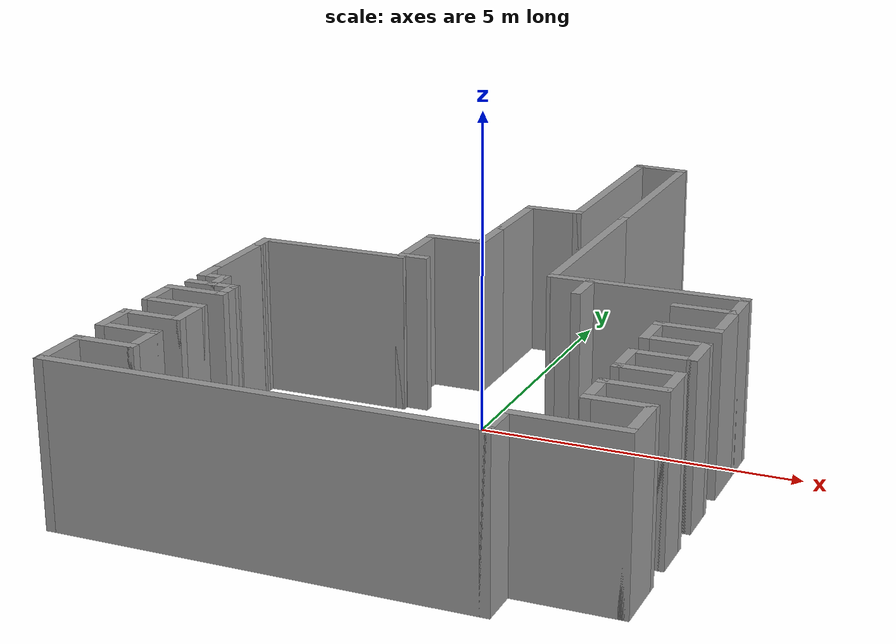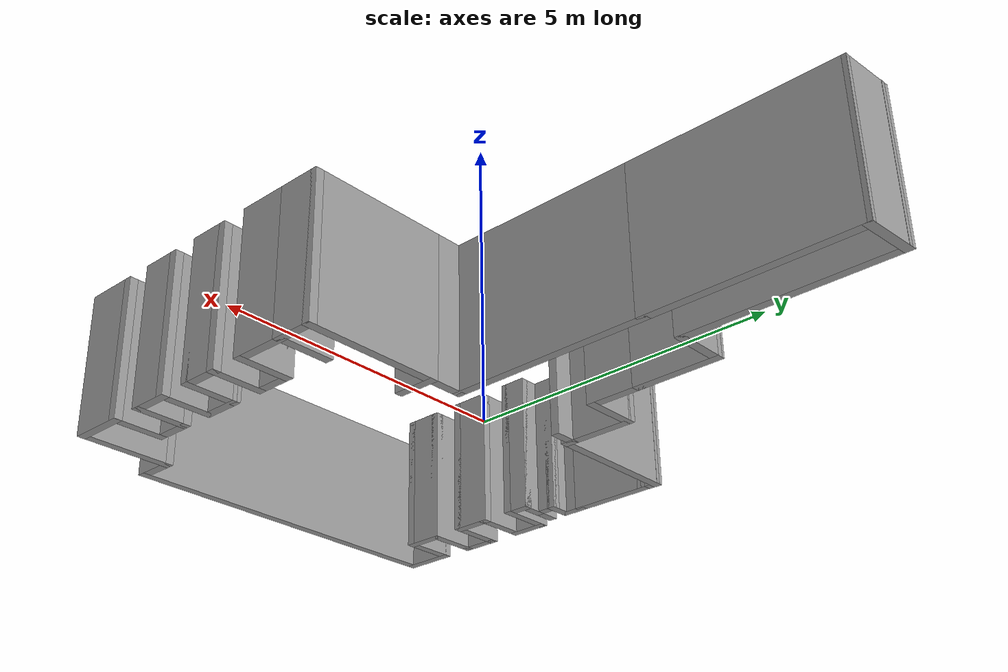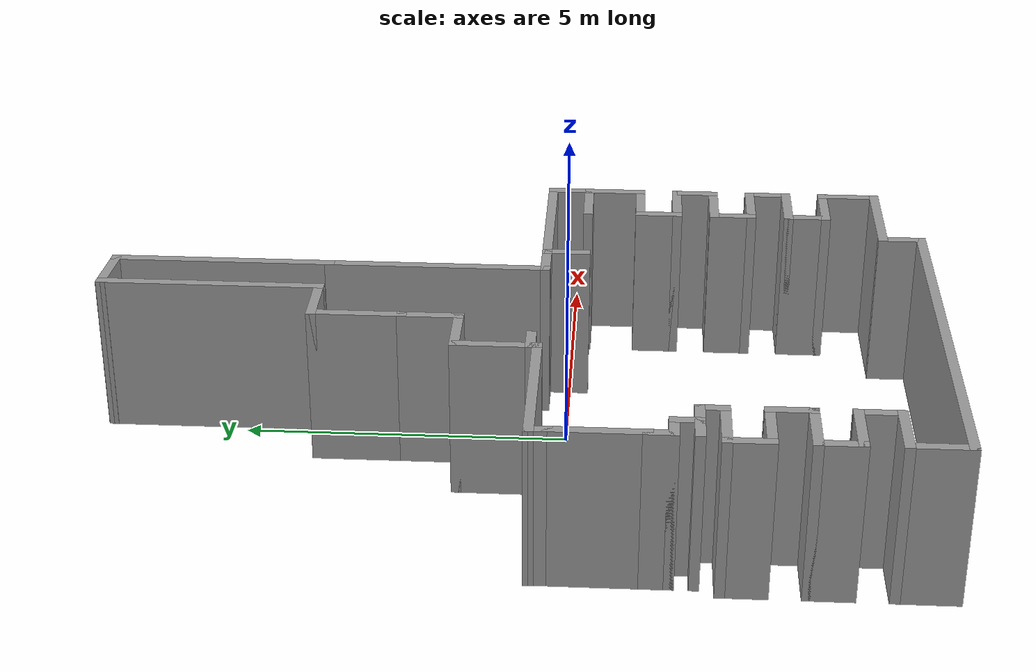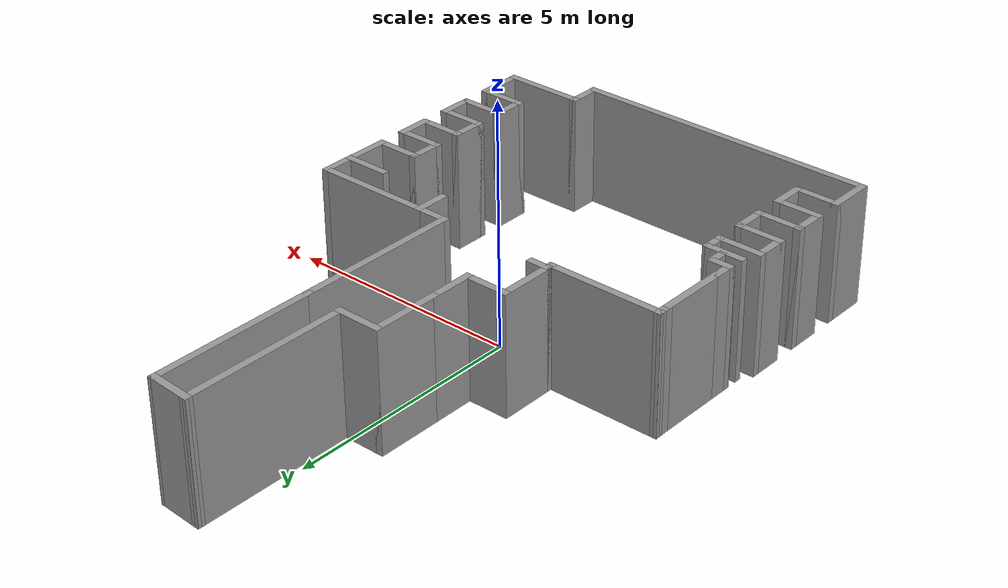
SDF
<?xml version='1.0'?>
<sdf version='1.7'>
  <model name='svr'>
    <pose>-0.051143 0.813155 0 0 -0 0</pose>
    <link name='Wall_0'>
      <collision name='Wall_0_Collision'>
        <geometry>
          <box>
            <size>0.5 0.15 2.5</size>
          </box>
        </geometry>
        <pose>0 0 1.25 0 -0 0</pose>
      </collision>
      <visual name='Wall_0_Visual'>
        <pose>0 0 1.25 0 -0 0</pose>
        <geometry>
          <box>
            <size>0.5 0.15 2.5</size>
          </box>
        </geometry>
        <material>
          <script>
            <uri>file://media/materials/scripts/gazebo.material</uri>
            <name>Gazebo/Grey</name>
          </script>
          <ambient>1 1 1 1</ambient>
        </material>
        <meta>
          <layer>0</layer>
        </meta>
      </visual>
      <pose>-3.825 -2.20301 0 0 -0 -1.5708</pose>
    </link>
    <link name='Wall_1'>
      <collision name='Wall_1_Collision'>
        <geometry>
          <box>
            <size>0.5 0.15 2.5</size>
          </box>
        </geometry>
        <pose>0 0 1.25 0 -0 0</pose>
      </collision>
      <visual name='Wall_1_Visual'>
        <pose>0 0 1.25 0 -0 0</pose>
        <geometry>
          <box>
            <size>0.5 0.15 2.5</size>
          </box>
        </geometry>
        <material>
          <script>
            <uri>file://media/materials/scripts/gazebo.material</uri>
            <name>Gazebo/Grey</name>
          </script>
          <ambient>1 1 1 1</ambient>
        </material>
        <meta>
          <layer>0</layer>
        </meta>
      </visual>
      <pose>-3.65 -2.37801 0 0 -0 0</pose>
    </link>
    <link name='Wall_11'>
      <collision name='Wall_11_Collision'>
        <geometry>
          <box>
            <size>0.5 0.15 2.5</size>
          </box>
        </geometry>
        <pose>0 0 1.25 0 -0 0</pose>
      </collision>
      <visual name='Wall_11_Visual'>
        <pose>0 0 1.25 0 -0 0</pose>
        <geometry>
          <box>
            <size>0.5 0.15 2.5</size>
          </box>
        </geometry>
        <material>
          <script>
            <uri>file://media/materials/scripts/gazebo.material</uri>
            <name>Gazebo/Grey</name>
          </script>
          <ambient>1 1 1 1</ambient>
        </material>
        <meta>
          <layer>0</layer>
        </meta>
      </visual>
      <pose>-3.3 -2.72801 0 0 -0 0</pose>
    </link>
    <link name='Wall_12'>
      <collision name='Wall_12_Collision'>
        <geometry>
          <box>
            <size>0.5 0.15 2.5</size>
          </box>
        </geometry>
        <pose>0 0 1.25 0 -0 0</pose>
      </collision>
      <visual name='Wall_12_Visual'>
        <pose>0 0 1.25 0 -0 0</pose>
        <geometry>
          <box>
            <size>0.5 0.15 2.5</size>
          </box>
        </geometry>
        <material>
          <script>
            <uri>file://media/materials/scripts/gazebo.material</uri>
            <name>Gazebo/Grey</name>
          </script>
          <ambient>1 1 1 1</ambient>
        </material>
        <meta>
          <layer>0</layer>
        </meta>
      </visual>
      <pose>-3.125 -2.90301 0 0 -0 -1.5708</pose>
    </link>
    <link name='Wall_13'>
      <collision name='Wall_13_Collision'>
        <geometry>
          <box>
            <size>1 0.15 2.5</size>
          </box>
        </geometry>
        <pose>0 0 1.25 0 -0 0</pose>
      </collision>
      <visual name='Wall_13_Visual'>
        <pose>0 0 1.25 0 -0 0</pose>
        <geometry>
          <box>
            <size>1 0.15 2.5</size>
          </box>
        </geometry>
        <material>
          <script>
            <uri>file://media/materials/scripts/gazebo.material</uri>
            <name>Gazebo/Grey</name>
          </script>
          <ambient>1 1 1 1</ambient>
        </material>
        <meta>
          <layer>0</layer>
        </meta>
      </visual>
      <pose>-3.55 -3.07801 0 0 -0 3.14159</pose>
    </link>
    <link name='Wall_18'>
      <collision name='Wall_18_Collision'>
        <geometry>
          <box>
            <size>0.75 0.15 2.5</size>
          </box>
        </geometry>
        <pose>0 0 1.25 0 -0 0</pose>
      </collision>
      <visual name='Wall_18_Visual'>
        <pose>0 0 1.25 0 -0 0</pose>
        <geometry>
          <box>
            <size>0.75 0.15 2.5</size>
          </box>
        </geometry>
        <material>
          <script>
            <uri>file://media/materials/scripts/gazebo.material</uri>
            <name>Gazebo/Grey</name>
          </script>
          <ambient>1 1 1 1</ambient>
        </material>
        <meta>
          <layer>0</layer>
        </meta>
      </visual>
      <pose>-3.975 -3.37801 0 0 -0 -1.5708</pose>
    </link>
    <link name='Wall_19'>
      <collision name='Wall_19_Collision'>
        <geometry>
          <box>
            <size>1 0.15 2.5</size>
          </box>
        </geometry>
        <pose>0 0 1.25 0 -0 0</pose>
      </collision>
      <visual name='Wall_19_Visual'>
        <pose>0 0 1.25 0 -0 0</pose>
        <geometry>
          <box>
            <size>1 0.15 2.5</size>
          </box>
        </geometry>
        <material>
          <script>
            <uri>file://media/materials/scripts/gazebo.material</uri>
            <name>Gazebo/Grey</name>
          </script>
          <ambient>1 1 1 1</ambient>
        </material>
        <meta>
          <layer>0</layer>
        </meta>
      </visual>
      <pose>-3.55 -3.67801 0 0 -0 0</pose>
    </link>
    <link name='Wall_21'>
      <collision name='Wall_21_Collision'>
        <geometry>
          <box>
            <size>0.75 0.15 2.5</size>
          </box>
        </geometry>
        <pose>0 0 1.25 0 -0 0</pose>
      </collision>
      <visual name='Wall_21_Visual'>
        <pose>0 0 1.25 0 -0 0</pose>
        <geometry>
          <box>
            <size>0.75 0.15 2.5</size>
          </box>
        </geometry>
        <material>
          <script>
            <uri>file://media/materials/scripts/gazebo.material</uri>
            <name>Gazebo/Grey</name>
          </script>
          <ambient>1 1 1 1</ambient>
        </material>
        <meta>
          <layer>0</layer>
        </meta>
      </visual>
      <pose>-3.125 -3.97801 0 0 -0 -1.5708</pose>
    </link>
    <link name='Wall_22'>
      <collision name='Wall_22_Collision'>
        <geometry>
          <box>
            <size>1 0.15 2.5</size>
          </box>
        </geometry>
        <pose>0 0 1.25 0 -0 0</pose>
      </collision>
      <visual name='Wall_22_Visual'>
        <pose>0 0 1.25 0 -0 0</pose>
        <geometry>
          <box>
            <size>1 0.15 2.5</size>
          </box>
        </geometry>
        <material>
          <script>
            <uri>file://media/materials/scripts/gazebo.material</uri>
            <name>Gazebo/Grey</name>
          </script>
          <ambient>1 1 1 1</ambient>
        </material>
        <meta>
          <layer>0</layer>
        </meta>
      </visual>
      <pose>-3.55 -4.27801 0 0 -0 3.14159</pose>
    </link>
    <link name='Wall_23'>
      <collision name='Wall_23_Collision'>
        <geometry>
          <box>
            <size>0.75 0.15 2.5</size>
          </box>
        </geometry>
        <pose>0 0 1.25 0 -0 0</pose>
      </collision>
      <visual name='Wall_23_Visual'>
        <pose>0 0 1.25 0 -0 0</pose>
        <geometry>
          <box>
            <size>0.75 0.15 2.5</size>
          </box>
        </geometry>
        <material>
          <script>
            <uri>file://media/materials/scripts/gazebo.material</uri>
            <name>Gazebo/Grey</name>
          </script>
          <ambient>1 1 1 1</ambient>
        </material>
        <meta>
          <layer>0</layer>
        </meta>
      </visual>
      <pose>-3.975 -4.57801 0 0 -0 -1.5708</pose>
    </link>
    <link name='Wall_24'>
      <collision name='Wall_24_Collision'>
        <geometry>
          <box>
            <size>1 0.15 2.5</size>
          </box>
        </geometry>
        <pose>0 0 1.25 0 -0 0</pose>
      </collision>
      <visual name='Wall_24_Visual'>
        <pose>0 0 1.25 0 -0 0</pose>
        <geometry>
          <box>
            <size>1 0.15 2.5</size>
          </box>
        </geometry>
        <material>
          <script>
            <uri>file://media/materials/scripts/gazebo.material</uri>
            <name>Gazebo/Grey</name>
          </script>
          <ambient>1 1 1 1</ambient>
        </material>
        <meta>
          <layer>0</layer>
        </meta>
      </visual>
      <pose>-3.55 -4.87801 0 0 -0 0</pose>
    </link>
    <link name='Wall_26'>
      <collision name='Wall_26_Collision'>
        <geometry>
          <box>
            <size>0.75 0.15 2.5</size>
          </box>
        </geometry>
        <pose>0 0 1.25 0 -0 0</pose>
      </collision>
      <visual name='Wall_26_Visual'>
        <pose>0 0 1.25 0 -0 0</pose>
        <geometry>
          <box>
            <size>0.75 0.15 2.5</size>
          </box>
        </geometry>
        <material>
          <script>
            <uri>file://media/materials/scripts/gazebo.material</uri>
            <name>Gazebo/Grey</name>
          </script>
          <ambient>1 1 1 1</ambient>
        </material>
        <meta>
          <layer>0</layer>
        </meta>
      </visual>
      <pose>-3.125 -5.17801 0 0 -0 -1.5708</pose>
    </link>
    <link name='Wall_27'>
      <collision name='Wall_27_Collision'>
        <geometry>
          <box>
            <size>1 0.15 2.5</size>
          </box>
        </geometry>
        <pose>0 0 1.25 0 -0 0</pose>
      </collision>
      <visual name='Wall_27_Visual'>
        <pose>0 0 1.25 0 -0 0</pose>
        <geometry>
          <box>
            <size>1 0.15 2.5</size>
          </box>
        </geometry>
        <material>
          <script>
            <uri>file://media/materials/scripts/gazebo.material</uri>
            <name>Gazebo/Grey</name>
          </script>
          <ambient>1 1 1 1</ambient>
        </material>
        <meta>
          <layer>0</layer>
        </meta>
      </visual>
      <pose>-3.55 -5.47801 0 0 -0 3.14159</pose>
    </link>
    <link name='Wall_28'>
      <collision name='Wall_28_Collision'>
        <geometry>
          <box>
            <size>1 0.15 2.5</size>
          </box>
        </geometry>
        <pose>0 0 1.25 0 -0 0</pose>
      </collision>
      <visual name='Wall_28_Visual'>
        <pose>0 0 1.25 0 -0 0</pose>
        <geometry>
          <box>
            <size>1 0.15 2.5</size>
          </box>
        </geometry>
        <material>
          <script>
            <uri>file://media/materials/scripts/gazebo.material</uri>
            <name>Gazebo/Grey</name>
          </script>
          <ambient>1 1 1 1</ambient>
        </material>
        <meta>
          <layer>0</layer>
        </meta>
      </visual>
      <pose>-3.975 -5.90301 0 0 -0 -1.5708</pose>
    </link>
    <link name='Wall_30'>
      <collision name='Wall_30_Collision'>
        <geometry>
          <box>
            <size>6.5 0.15 2.5</size>
          </box>
        </geometry>
        <pose>0 0 1.25 0 -0 0</pose>
      </collision>
      <visual name='Wall_30_Visual'>
        <pose>0 0 1.25 0 -0 0</pose>
        <geometry>
          <box>
            <size>6.5 0.15 2.5</size>
          </box>
        </geometry>
        <material>
          <script>
            <uri>file://media/materials/scripts/gazebo.material</uri>
            <name>Gazebo/Grey</name>
          </script>
          <ambient>1 1 1 1</ambient>
        </material>
        <meta>
          <layer>0</layer>
        </meta>
      </visual>
      <pose>-0.8 -6.32801 0 0 -0 0</pose>
    </link>
    <link name='Wall_31'>
      <collision name='Wall_31_Collision'>
        <geometry>
          <box>
            <size>0.75 0.15 2.5</size>
          </box>
        </geometry>
        <pose>0 0 1.25 0 -0 0</pose>
      </collision>
      <visual name='Wall_31_Visual'>
        <pose>0 0 1.25 0 -0 0</pose>
        <geometry>
          <box>
            <size>0.75 0.15 2.5</size>
          </box>
        </geometry>
        <material>
          <script>
            <uri>file://media/materials/scripts/gazebo.material</uri>
            <name>Gazebo/Grey</name>
          </script>
          <ambient>1 1 1 1</ambient>
        </material>
        <meta>
          <layer>0</layer>
        </meta>
      </visual>
      <pose>2.375 -6.02801 0 0 -0 1.5708</pose>
    </link>
    <link name='Wall_33'>
      <collision name='Wall_33_Collision'>
        <geometry>
          <box>
            <size>1.75 0.15 2.5</size>
          </box>
        </geometry>
        <pose>0 0 1.25 0 -0 0</pose>
      </collision>
      <visual name='Wall_33_Visual'>
        <pose>0 0 1.25 0 -0 0</pose>
        <geometry>
          <box>
            <size>1.75 0.15 2.5</size>
          </box>
        </geometry>
        <material>
          <script>
            <uri>file://media/materials/scripts/gazebo.material</uri>
            <name>Gazebo/Grey</name>
          </script>
          <ambient>1 1 1 1</ambient>
        </material>
        <meta>
          <layer>0</layer>
        </meta>
      </visual>
      <pose>3.175 -5.72801 0 0 -0 0</pose>
    </link>
    <link name='Wall_34'>
      <collision name='Wall_34_Collision'>
        <geometry>
          <box>
            <size>1 0.15 2.5</size>
          </box>
        </geometry>
        <pose>0 0 1.25 0 -0 0</pose>
      </collision>
      <visual name='Wall_34_Visual'>
        <pose>0 0 1.25 0 -0 0</pose>
        <geometry>
          <box>
            <size>1 0.15 2.5</size>
          </box>
        </geometry>
        <material>
          <script>
            <uri>file://media/materials/scripts/gazebo.material</uri>
            <name>Gazebo/Grey</name>
          </script>
          <ambient>1 1 1 1</ambient>
        </material>
        <meta>
          <layer>0</layer>
        </meta>
      </visual>
      <pose>3.975 -5.30301 0 0 -0 1.5708</pose>
    </link>
    <link name='Wall_35'>
      <collision name='Wall_35_Collision'>
        <geometry>
          <box>
            <size>1 0.15 2.5</size>
          </box>
        </geometry>
        <pose>0 0 1.25 0 -0 0</pose>
      </collision>
      <visual name='Wall_35_Visual'>
        <pose>0 0 1.25 0 -0 0</pose>
        <geometry>
          <box>
            <size>1 0.15 2.5</size>
          </box>
        </geometry>
        <material>
          <script>
            <uri>file://media/materials/scripts/gazebo.material</uri>
            <name>Gazebo/Grey</name>
          </script>
          <ambient>1 1 1 1</ambient>
        </material>
        <meta>
          <layer>0</layer>
        </meta>
      </visual>
      <pose>3.55 -4.87801 0 0 -0 3.14159</pose>
    </link>
    <link name='Wall_36'>
      <collision name='Wall_36_Collision'>
        <geometry>
          <box>
            <size>0.75 0.15 2.5</size>
          </box>
        </geometry>
        <pose>0 0 1.25 0 -0 0</pose>
      </collision>
      <visual name='Wall_36_Visual'>
        <pose>0 0 1.25 0 -0 0</pose>
        <geometry>
          <box>
            <size>0.75 0.15 2.5</size>
          </box>
        </geometry>
        <material>
          <script>
            <uri>file://media/materials/scripts/gazebo.material</uri>
            <name>Gazebo/Grey</name>
          </script>
          <ambient>1 1 1 1</ambient>
        </material>
        <meta>
          <layer>0</layer>
        </meta>
      </visual>
      <pose>3.125 -4.57801 0 0 -0 1.5708</pose>
    </link>
    <link name='Wall_37'>
      <collision name='Wall_37_Collision'>
        <geometry>
          <box>
            <size>1 0.15 2.5</size>
          </box>
        </geometry>
        <pose>0 0 1.25 0 -0 0</pose>
      </collision>
      <visual name='Wall_37_Visual'>
        <pose>0 0 1.25 0 -0 0</pose>
        <geometry>
          <box>
            <size>1 0.15 2.5</size>
          </box>
        </geometry>
        <material>
          <script>
            <uri>file://media/materials/scripts/gazebo.material</uri>
            <name>Gazebo/Grey</name>
          </script>
          <ambient>1 1 1 1</ambient>
        </material>
        <meta>
          <layer>0</layer>
        </meta>
      </visual>
      <pose>3.55 -4.27801 0 0 -0 0</pose>
    </link>
    <link name='Wall_38'>
      <collision name='Wall_38_Collision'>
        <geometry>
          <box>
            <size>0.75 0.15 2.5</size>
          </box>
        </geometry>
        <pose>0 0 1.25 0 -0 0</pose>
      </collision>
      <visual name='Wall_38_Visual'>
        <pose>0 0 1.25 0 -0 0</pose>
        <geometry>
          <box>
            <size>0.75 0.15 2.5</size>
          </box>
        </geometry>
        <material>
          <script>
            <uri>file://media/materials/scripts/gazebo.material</uri>
            <name>Gazebo/Grey</name>
          </script>
          <ambient>1 1 1 1</ambient>
        </material>
        <meta>
          <layer>0</layer>
        </meta>
      </visual>
      <pose>3.975 -3.97801 0 0 -0 1.5708</pose>
    </link>
    <link name='Wall_39'>
      <collision name='Wall_39_Collision'>
        <geometry>
          <box>
            <size>1 0.15 2.5</size>
          </box>
        </geometry>
        <pose>0 0 1.25 0 -0 0</pose>
      </collision>
      <visual name='Wall_39_Visual'>
        <pose>0 0 1.25 0 -0 0</pose>
        <geometry>
          <box>
            <size>1 0.15 2.5</size>
          </box>
        </geometry>
        <material>
          <script>
            <uri>file://media/materials/scripts/gazebo.material</uri>
            <name>Gazebo/Grey</name>
          </script>
          <ambient>1 1 1 1</ambient>
        </material>
        <meta>
          <layer>0</layer>
        </meta>
      </visual>
      <pose>3.55 -3.67801 0 0 -0 3.14159</pose>
    </link>
    <link name='Wall_40'>
      <collision name='Wall_40_Collision'>
        <geometry>
          <box>
            <size>0.75 0.15 2.5</size>
          </box>
        </geometry>
        <pose>0 0 1.25 0 -0 0</pose>
      </collision>
      <visual name='Wall_40_Visual'>
        <pose>0 0 1.25 0 -0 0</pose>
        <geometry>
          <box>
            <size>0.75 0.15 2.5</size>
          </box>
        </geometry>
        <material>
          <script>
            <uri>file://media/materials/scripts/gazebo.material</uri>
            <name>Gazebo/Grey</name>
          </script>
          <ambient>1 1 1 1</ambient>
        </material>
        <meta>
          <layer>0</layer>
        </meta>
      </visual>
      <pose>3.125 -3.37801 0 0 -0 1.5708</pose>
    </link>
    <link name='Wall_41'>
      <collision name='Wall_41_Collision'>
        <geometry>
          <box>
            <size>1 0.15 2.5</size>
          </box>
        </geometry>
        <pose>0 0 1.25 0 -0 0</pose>
      </collision>
      <visual name='Wall_41_Visual'>
        <pose>0 0 1.25 0 -0 0</pose>
        <geometry>
          <box>
            <size>1 0.15 2.5</size>
          </box>
        </geometry>
        <material>
          <script>
            <uri>file://media/materials/scripts/gazebo.material</uri>
            <name>Gazebo/Grey</name>
          </script>
          <ambient>1 1 1 1</ambient>
        </material>
        <meta>
          <layer>0</layer>
        </meta>
      </visual>
      <pose>3.55 -3.07801 0 0 -0 0</pose>
    </link>
    <link name='Wall_43'>
      <collision name='Wall_43_Collision'>
        <geometry>
          <box>
            <size>0.75 0.15 2.5</size>
          </box>
        </geometry>
        <pose>0 0 1.25 0 -0 0</pose>
      </collision>
      <visual name='Wall_43_Visual'>
        <pose>0 0 1.25 0 -0 0</pose>
        <geometry>
          <box>
            <size>0.75 0.15 2.5</size>
          </box>
        </geometry>
        <material>
          <script>
            <uri>file://media/materials/scripts/gazebo.material</uri>
            <name>Gazebo/Grey</name>
          </script>
          <ambient>1 1 1 1</ambient>
        </material>
        <meta>
          <layer>0</layer>
        </meta>
      </visual>
      <pose>3.975 -2.77801 0 0 -0 1.5708</pose>
    </link>
    <link name='Wall_44'>
      <collision name='Wall_44_Collision'>
        <geometry>
          <box>
            <size>1 0.15 2.5</size>
          </box>
        </geometry>
        <pose>0 0 1.25 0 -0 0</pose>
      </collision>
      <visual name='Wall_44_Visual'>
        <pose>0 0 1.25 0 -0 0</pose>
        <geometry>
          <box>
            <size>1 0.15 2.5</size>
          </box>
        </geometry>
        <material>
          <script>
            <uri>file://media/materials/scripts/gazebo.material</uri>
            <name>Gazebo/Grey</name>
          </script>
          <ambient>1 1 1 1</ambient>
        </material>
        <meta>
          <layer>0</layer>
        </meta>
      </visual>
      <pose>3.55 -2.47801 0 0 -0 3.14159</pose>
    </link>
    <link name='Wall_45'>
      <collision name='Wall_45_Collision'>
        <geometry>
          <box>
            <size>0.75 0.15 2.5</size>
          </box>
        </geometry>
        <pose>0 0 1.25 0 -0 0</pose>
      </collision>
      <visual name='Wall_45_Visual'>
        <pose>0 0 1.25 0 -0 0</pose>
        <geometry>
          <box>
            <size>0.75 0.15 2.5</size>
          </box>
        </geometry>
        <material>
          <script>
            <uri>file://media/materials/scripts/gazebo.material</uri>
            <name>Gazebo/Grey</name>
          </script>
          <ambient>1 1 1 1</ambient>
        </material>
        <meta>
          <layer>0</layer>
        </meta>
      </visual>
      <pose>3.125 -2.17801 0 0 -0 1.5708</pose>
    </link>
    <link name='Wall_46'>
      <collision name='Wall_46_Collision'>
        <geometry>
          <box>
            <size>1 0.15 2.5</size>
          </box>
        </geometry>
        <pose>0 0 1.25 0 -0 0</pose>
      </collision>
      <visual name='Wall_46_Visual'>
        <pose>0 0 1.25 0 -0 0</pose>
        <geometry>
          <box>
            <size>1 0.15 2.5</size>
          </box>
        </geometry>
        <material>
          <script>
            <uri>file://media/materials/scripts/gazebo.material</uri>
            <name>Gazebo/Grey</name>
          </script>
          <ambient>1 1 1 1</ambient>
        </material>
        <meta>
          <layer>0</layer>
        </meta>
      </visual>
      <pose>3.55 -1.87801 0 0 -0 0</pose>
    </link>
    <link name='Wall_47'>
      <collision name='Wall_47_Collision'>
        <geometry>
          <box>
            <size>1 0.15 2.5</size>
          </box>
        </geometry>
        <pose>0 0 1.25 0 -0 0</pose>
      </collision>
      <visual name='Wall_47_Visual'>
        <pose>0 0 1.25 0 -0 0</pose>
        <geometry>
          <box>
            <size>1 0.15 2.5</size>
          </box>
        </geometry>
        <material>
          <script>
            <uri>file://media/materials/scripts/gazebo.material</uri>
            <name>Gazebo/Grey</name>
          </script>
          <ambient>1 1 1 1</ambient>
        </material>
        <meta>
          <layer>0</layer>
        </meta>
      </visual>
      <pose>3.975 -1.45301 0 0 -0 1.5708</pose>
    </link>
    <link name='Wall_48'>
      <collision name='Wall_48_Collision'>
        <geometry>
          <box>
            <size>1 0.15 2.5</size>
          </box>
        </geometry>
        <pose>0 0 1.25 0 -0 0</pose>
      </collision>
      <visual name='Wall_48_Visual'>
        <pose>0 0 1.25 0 -0 0</pose>
        <geometry>
          <box>
            <size>1 0.15 2.5</size>
          </box>
        </geometry>
        <material>
          <script>
            <uri>file://media/materials/scripts/gazebo.material</uri>
            <name>Gazebo/Grey</name>
          </script>
          <ambient>1 1 1 1</ambient>
        </material>
        <meta>
          <layer>0</layer>
        </meta>
      </visual>
      <pose>3.55 -1.02801 0 0 -0 3.14159</pose>
    </link>
    <link name='Wall_50'>
      <collision name='Wall_50_Collision'>
        <geometry>
          <box>
            <size>0.75 0.15 2.5</size>
          </box>
        </geometry>
        <pose>0 0 1.25 0 -0 0</pose>
      </collision>
      <visual name='Wall_50_Visual'>
        <pose>0 0 1.25 0 -0 0</pose>
        <geometry>
          <box>
            <size>0.75 0.15 2.5</size>
          </box>
        </geometry>
        <material>
          <script>
            <uri>file://media/materials/scripts/gazebo.material</uri>
            <name>Gazebo/Grey</name>
          </script>
          <ambient>1 1 1 1</ambient>
        </material>
        <meta>
          <layer>0</layer>
        </meta>
      </visual>
      <pose>3.975 -0.72801 0 0 -0 1.5708</pose>
    </link>
    <link name='Wall_52'>
      <collision name='Wall_52_Collision'>
        <geometry>
          <box>
            <size>1.5 0.15 2.5</size>
          </box>
        </geometry>
        <pose>0 0 1.25 0 -0 0</pose>
      </collision>
      <visual name='Wall_52_Visual'>
        <pose>0 0 1.25 0 -0 0</pose>
        <geometry>
          <box>
            <size>1.5 0.15 2.5</size>
          </box>
        </geometry>
        <material>
          <script>
            <uri>file://media/materials/scripts/gazebo.material</uri>
            <name>Gazebo/Grey</name>
          </script>
          <ambient>1 1 1 1</ambient>
        </material>
        <meta>
          <layer>0</layer>
        </meta>
      </visual>
      <pose>-3.825 -1.35301 0 0 -0 1.5708</pose>
    </link>
    <link name='Wall_7'>
      <collision name='Wall_7_Collision'>
        <geometry>
          <box>
            <size>0.5 0.15 2.5</size>
          </box>
        </geometry>
        <pose>0 0 1.25 0 -0 0</pose>
      </collision>
      <visual name='Wall_7_Visual'>
        <pose>0 0 1.25 0 -0 0</pose>
        <geometry>
          <box>
            <size>0.5 0.15 2.5</size>
          </box>
        </geometry>
        <material>
          <script>
            <uri>file://media/materials/scripts/gazebo.material</uri>
            <name>Gazebo/Grey</name>
          </script>
          <ambient>1 1 1 1</ambient>
        </material>
        <meta>
          <layer>0</layer>
        </meta>
      </visual>
      <pose>-3.475 -2.55301 0 0 -0 -1.5708</pose>
    </link>
    <link name='Wall_72'>
      <collision name='Wall_72_Collision'>
        <geometry>
          <box>
            <size>0.40146 0.15 2.5</size>
          </box>
        </geometry>
        <pose>0 0 1.25 0 -0 0</pose>
      </collision>
      <visual name='Wall_72_Visual'>
        <pose>0 0 1.25 0 -0 0</pose>
        <geometry>
          <box>
            <size>0.40146 0.15 2.5</size>
          </box>
        </geometry>
        <material>
          <script>
            <uri>file://media/materials/scripts/gazebo.material</uri>
            <name>Gazebo/Grey</name>
          </script>
          <ambient>1 1 1 1</ambient>
        </material>
        <meta>
          <layer>0</layer>
        </meta>
      </visual>
      <pose>-3.82783 -0.552311 0 0 -0 1.5933</pose>
    </link>
    <link name='Wall_74'>
      <collision name='Wall_74_Collision'>
        <geometry>
          <box>
            <size>2.5 0.15 2.5</size>
          </box>
        </geometry>
        <pose>0 0 1.25 0 -0 0</pose>
      </collision>
      <visual name='Wall_74_Visual'>
        <pose>0 0 1.25 0 -0 0</pose>
        <geometry>
          <box>
            <size>2.5 0.15 2.5</size>
          </box>
        </geometry>
        <material>
          <script>
            <uri>file://media/materials/scripts/gazebo.material</uri>
            <name>Gazebo/Grey</name>
          </script>
          <ambient>1 1 1 1</ambient>
        </material>
        <meta>
          <layer>0</layer>
        </meta>
      </visual>
      <pose>-2.65566 -0.426613 0 0 -0 0</pose>
    </link>
    <link name='Wall_75'>
      <collision name='Wall_75_Collision'>
        <geometry>
          <box>
            <size>0.25 0.15 2.5</size>
          </box>
        </geometry>
        <pose>0 0 1.25 0 -0 0</pose>
      </collision>
      <visual name='Wall_75_Visual'>
        <pose>0 0 1.25 0 -0 0</pose>
        <geometry>
          <box>
            <size>0.25 0.15 2.5</size>
          </box>
        </geometry>
        <material>
          <script>
            <uri>file://media/materials/scripts/gazebo.material</uri>
            <name>Gazebo/Grey</name>
          </script>
          <ambient>1 1 1 1</ambient>
        </material>
        <meta>
          <layer>0</layer>
        </meta>
      </visual>
      <pose>-1.48066 -0.376613 0 0 -0 1.5708</pose>
    </link>
    <link name='Wall_76'>
      <collision name='Wall_76_Collision'>
        <geometry>
          <box>
            <size>0.5 0.15 2.5</size>
          </box>
        </geometry>
        <pose>0 0 1.25 0 -0 0</pose>
      </collision>
      <visual name='Wall_76_Visual'>
        <pose>0 0 1.25 0 -0 0</pose>
        <geometry>
          <box>
            <size>0.5 0.15 2.5</size>
          </box>
        </geometry>
        <material>
          <script>
            <uri>file://media/materials/scripts/gazebo.material</uri>
            <name>Gazebo/Grey</name>
          </script>
          <ambient>1 1 1 1</ambient>
        </material>
        <meta>
          <layer>0</layer>
        </meta>
      </visual>
      <pose>-1.30566 -0.326613 0 0 -0 0</pose>
    </link>
    <link name='Wall_78'>
      <collision name='Wall_78_Collision'>
        <geometry>
          <box>
            <size>1.25 0.15 2.5</size>
          </box>
        </geometry>
        <pose>0 0 1.25 0 -0 0</pose>
      </collision>
      <visual name='Wall_78_Visual'>
        <pose>0 0 1.25 0 -0 0</pose>
        <geometry>
          <box>
            <size>1.25 0.15 2.5</size>
          </box>
        </geometry>
        <material>
          <script>
            <uri>file://media/materials/scripts/gazebo.material</uri>
            <name>Gazebo/Grey</name>
          </script>
          <ambient>1 1 1 1</ambient>
        </material>
        <meta>
          <layer>0</layer>
        </meta>
      </visual>
      <pose>-1.48066 0.223387 0 0 -0 1.5708</pose>
    </link>
    <link name='Wall_79'>
      <collision name='Wall_79_Collision'>
        <geometry>
          <box>
            <size>1 0.15 2.5</size>
          </box>
        </geometry>
        <pose>0 0 1.25 0 -0 0</pose>
      </collision>
      <visual name='Wall_79_Visual'>
        <pose>0 0 1.25 0 -0 0</pose>
        <geometry>
          <box>
            <size>1 0.15 2.5</size>
          </box>
        </geometry>
        <material>
          <script>
            <uri>file://media/materials/scripts/gazebo.material</uri>
            <name>Gazebo/Grey</name>
          </script>
          <ambient>1 1 1 1</ambient>
        </material>
        <meta>
          <layer>0</layer>
        </meta>
      </visual>
      <pose>-1.05566 0.773387 0 0 -0 0</pose>
    </link>
    <link name='Wall_80'>
      <collision name='Wall_80_Collision'>
        <geometry>
          <box>
            <size>1 0.15 2.5</size>
          </box>
        </geometry>
        <pose>0 0 1.25 0 -0 0</pose>
      </collision>
      <visual name='Wall_80_Visual'>
        <pose>0 0 1.25 0 -0 0</pose>
        <geometry>
          <box>
            <size>1 0.15 2.5</size>
          </box>
        </geometry>
        <material>
          <script>
            <uri>file://media/materials/scripts/gazebo.material</uri>
            <name>Gazebo/Grey</name>
          </script>
          <ambient>1 1 1 1</ambient>
        </material>
        <meta>
          <layer>0</layer>
        </meta>
      </visual>
      <pose>-0.630659 1.19839 0 0 -0 1.5708</pose>
    </link>
    <link name='Wall_81'>
      <collision name='Wall_81_Collision'>
        <geometry>
          <box>
            <size>1.5 0.15 2.5</size>
          </box>
        </geometry>
        <pose>0 0 1.25 0 -0 0</pose>
      </collision>
      <visual name='Wall_81_Visual'>
        <pose>0 0 1.25 0 -0 0</pose>
        <geometry>
          <box>
            <size>1.5 0.15 2.5</size>
          </box>
        </geometry>
        <material>
          <script>
            <uri>file://media/materials/scripts/gazebo.material</uri>
            <name>Gazebo/Grey</name>
          </script>
          <ambient>1 1 1 1</ambient>
        </material>
        <meta>
          <layer>0</layer>
        </meta>
      </visual>
      <pose>-0.630659 2.29839 0 0 -0 1.5708</pose>
    </link>
    <link name='Wall_83'>
      <collision name='Wall_83_Collision'>
        <geometry>
          <box>
            <size>2.5 0.15 2.5</size>
          </box>
        </geometry>
        <pose>0 0 1.25 0 -0 0</pose>
      </collision>
      <visual name='Wall_83_Visual'>
        <pose>0 0 1.25 0 -0 0</pose>
        <geometry>
          <box>
            <size>2.5 0.15 2.5</size>
          </box>
        </geometry>
        <material>
          <script>
            <uri>file://media/materials/scripts/gazebo.material</uri>
            <name>Gazebo/Grey</name>
          </script>
          <ambient>1 1 1 1</ambient>
        </material>
        <meta>
          <layer>0</layer>
        </meta>
      </visual>
      <pose>2.8 -0.42801 0 0 -0 3.14159</pose>
    </link>
    <link name='Wall_84'>
      <collision name='Wall_84_Collision'>
        <geometry>
          <box>
            <size>0.75 0.15 2.5</size>
          </box>
        </geometry>
        <pose>0 0 1.25 0 -0 0</pose>
      </collision>
      <visual name='Wall_84_Visual'>
        <pose>0 0 1.25 0 -0 0</pose>
        <geometry>
          <box>
            <size>0.75 0.15 2.5</size>
          </box>
        </geometry>
        <material>
          <script>
            <uri>file://media/materials/scripts/gazebo.material</uri>
            <name>Gazebo/Grey</name>
          </script>
          <ambient>1 1 1 1</ambient>
        </material>
        <meta>
          <layer>0</layer>
        </meta>
      </visual>
      <pose>1.625 -0.72801 0 0 -0 -1.5708</pose>
    </link>
    <link name='Wall_86'>
      <collision name='Wall_86_Collision'>
        <geometry>
          <box>
            <size>0.75 0.15 2.5</size>
          </box>
        </geometry>
        <pose>0 0 1.25 0 -0 0</pose>
      </collision>
      <visual name='Wall_86_Visual'>
        <pose>0 0 1.25 0 -0 0</pose>
        <geometry>
          <box>
            <size>0.75 0.15 2.5</size>
          </box>
        </geometry>
        <material>
          <script>
            <uri>file://media/materials/scripts/gazebo.material</uri>
            <name>Gazebo/Grey</name>
          </script>
          <ambient>1 1 1 1</ambient>
        </material>
        <meta>
          <layer>0</layer>
        </meta>
      </visual>
      <pose>1.325 -0.42801 0 0 -0 3.14159</pose>
    </link>
    <link name='Wall_87'>
      <collision name='Wall_87_Collision'>
        <geometry>
          <box>
            <size>3.5 0.15 2.5</size>
          </box>
        </geometry>
        <pose>0 0 1.25 0 -0 0</pose>
      </collision>
      <visual name='Wall_87_Visual'>
        <pose>0 0 1.25 0 -0 0</pose>
        <geometry>
          <box>
            <size>3.5 0.15 2.5</size>
          </box>
        </geometry>
        <material>
          <script>
            <uri>file://media/materials/scripts/gazebo.material</uri>
            <name>Gazebo/Grey</name>
          </script>
          <ambient>1 1 1 1</ambient>
        </material>
        <meta>
          <layer>0</layer>
        </meta>
      </visual>
      <pose>1.025 1.24699 0 0 -0 1.5708</pose>
    </link>
    <link name='Wall_89'>
      <collision name='Wall_89_Collision'>
        <geometry>
          <box>
            <size>1 0.15 2.5</size>
          </box>
        </geometry>
        <pose>0 0 1.25 0 -0 0</pose>
      </collision>
      <visual name='Wall_89_Visual'>
        <pose>0 0 1.25 0 -0 0</pose>
        <geometry>
          <box>
            <size>1 0.15 2.5</size>
          </box>
        </geometry>
        <material>
          <script>
            <uri>file://media/materials/scripts/gazebo.material</uri>
            <name>Gazebo/Grey</name>
          </script>
          <ambient>1 1 1 1</ambient>
        </material>
        <meta>
          <layer>0</layer>
        </meta>
      </visual>
      <pose>-0.205659 2.97339 0 0 -0 0</pose>
    </link>
    <link name='Wall_9'>
      <collision name='Wall_9_Collision'>
        <geometry>
          <box>
            <size>0.5 0.15 2.5</size>
          </box>
        </geometry>
        <pose>0 0 1.25 0 -0 0</pose>
      </collision>
      <visual name='Wall_9_Visual'>
        <pose>0 0 1.25 0 -0 0</pose>
        <geometry>
          <box>
            <size>0.5 0.15 2.5</size>
          </box>
        </geometry>
        <material>
          <script>
            <uri>file://media/materials/scripts/gazebo.material</uri>
            <name>Gazebo/Grey</name>
          </script>
          <ambient>1 1 1 1</ambient>
        </material>
        <meta>
          <layer>0</layer>
        </meta>
      </visual>
      <pose>-3.65 -2.72801 0 0 -0 3.14159</pose>
    </link>
    <link name='Wall_91'>
      <collision name='Wall_91_Collision'>
        <geometry>
          <box>
            <size>3.5 0.15 2.5</size>
          </box>
        </geometry>
        <pose>0 0 1.25 0 -0 0</pose>
      </collision>
      <visual name='Wall_91_Visual'>
        <pose>0 0 1.25 0 -0 0</pose>
        <geometry>
          <box>
            <size>3.5 0.15 2.5</size>
          </box>
        </geometry>
        <material>
          <script>
            <uri>file://media/materials/scripts/gazebo.material</uri>
            <name>Gazebo/Grey</name>
          </script>
          <ambient>1 1 1 1</ambient>
        </material>
        <meta>
          <layer>0</layer>
        </meta>
      </visual>
      <pose>0.219341 4.64839 0 0 -0 1.5708</pose>
    </link>
    <link name='Wall_93'>
      <collision name='Wall_93_Collision'>
        <geometry>
          <box>
            <size>3.5 0.15 2.5</size>
          </box>
        </geometry>
        <pose>0 0 1.25 0 -0 0</pose>
      </collision>
      <visual name='Wall_93_Visual'>
        <pose>0 0 1.25 0 -0 0</pose>
        <geometry>
          <box>
            <size>3.5 0.15 2.5</size>
          </box>
        </geometry>
        <material>
          <script>
            <uri>file://media/materials/scripts/gazebo.material</uri>
            <name>Gazebo/Grey</name>
          </script>
          <ambient>1 1 1 1</ambient>
        </material>
        <meta>
          <layer>0</layer>
        </meta>
      </visual>
      <pose>1.025 4.59699 0 0 -0 1.5708</pose>
    </link>
    <link name='Wall_94'>
      <collision name='Wall_94_Collision'>
        <geometry>
          <box>
            <size>0.957297 0.15 2.5</size>
          </box>
        </geometry>
        <pose>0 0 1.25 0 -0 0</pose>
      </collision>
      <visual name='Wall_94_Visual'>
        <pose>0 0 1.25 0 -0 0</pose>
        <geometry>
          <box>
            <size>0.957297 0.15 2.5</size>
          </box>
        </geometry>
        <material>
          <script>
            <uri>file://media/materials/scripts/gazebo.material</uri>
            <name>Gazebo/Grey</name>
          </script>
          <ambient>1 1 1 1</ambient>
        </material>
        <meta>
          <layer>0</layer>
        </meta>
      </visual>
      <pose>0.622171 6.29769 0 0 -0 3.07788</pose>
    </link>
    <static>1</static>
  </model>
</sdf>
